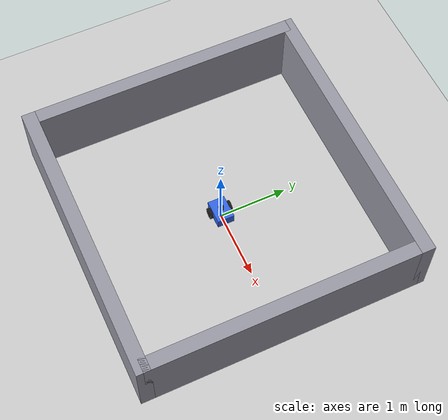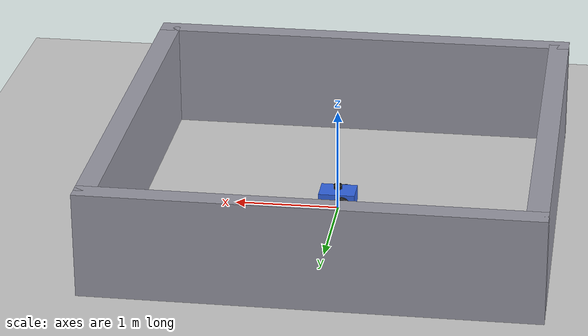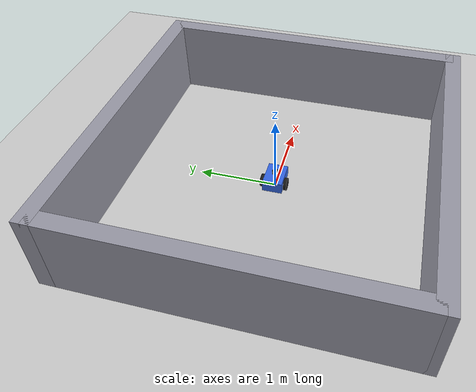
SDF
<?xml version="1.0" ?>
<sdf version="1.9">
  <world name="diff_drive_lidar_world">

    <physics name="1ms" type="ignored">
      <max_step_size>0.001</max_step_size>
      <real_time_factor>1.0</real_time_factor>
    </physics>

    <plugin filename="gz-sim-physics-system" name="gz::sim::systems::Physics">
    </plugin>
    <plugin filename="gz-sim-sensors-system" name="gz::sim::systems::Sensors">
      <render_engine>ogre</render_engine>
    </plugin>
    <plugin filename="gz-sim-scene-broadcaster-system" name="gz::sim::systems::SceneBroadcaster">
    </plugin>
    <plugin filename="gz-sim-user-commands-system" name="gz::sim::systems::UserCommands">
    </plugin>

    <light type="directional" name="sun">
      <cast_shadows>true</cast_shadows>
      <pose>0 0 10 0 0 0</pose>
      <diffuse>0.8 0.8 0.8 1</diffuse>
      <specular>0.2 0.2 0.2 1</specular>
      <attenuation>
        <range>1000</range>
        <constant>0.9</constant>
        <linear>0.01</linear>
        <quadratic>0.001</quadratic>
      </attenuation>
      <direction>-0.5 0.1 -0.9</direction>
    </light>

    <model name="ground_plane">
      <static>true</static>
      <link name="link">
        <collision name="collision">
          <geometry>
            <plane>
              <normal>0 0 1</normal>
              <size>20 20</size>
            </plane>
          </geometry>
        </collision>
        <visual name="visual">
          <geometry>
            <plane>
              <normal>0 0 1</normal>
              <size>20 20</size>
            </plane>
          </geometry>
          <material>
            <ambient>0.8 0.8 0.8 1</ambient>
            <diffuse>0.8 0.8 0.8 1</diffuse>
            <specular>0.8 0.8 0.8 1</specular>
          </material>
        </visual>
      </link>
    </model>

    <model name="arena_walls">
      <static>true</static>
      <link name="walls">
        <collision name="wall_north_collision">
          <pose>0 2 0.5 0 0 0</pose>
          <geometry><box><size>4.2 0.2 1.0</size></box></geometry>
        </collision>
        <visual name="wall_north_visual">
          <pose>0 2 0.5 0 0 0</pose>
          <geometry><box><size>4.2 0.2 1.0</size></box></geometry>
          <material>
            <ambient>0.6 0.6 0.65 1</ambient>
            <diffuse>0.6 0.6 0.65 1</diffuse>
          </material>
        </visual>

        <collision name="wall_south_collision">
          <pose>0 -2 0.5 0 0 0</pose>
          <geometry><box><size>4.2 0.2 1.0</size></box></geometry>
        </collision>
        <visual name="wall_south_visual">
          <pose>0 -2 0.5 0 0 0</pose>
          <geometry><box><size>4.2 0.2 1.0</size></box></geometry>
          <material>
            <ambient>0.6 0.6 0.65 1</ambient>
            <diffuse>0.6 0.6 0.65 1</diffuse>
          </material>
        </visual>

        <collision name="wall_east_collision">
          <pose>2 0 0.5 0 0 0</pose>
          <geometry><box><size>0.2 4.0 1.0</size></box></geometry>
        </collision>
        <visual name="wall_east_visual">
          <pose>2 0 0.5 0 0 0</pose>
          <geometry><box><size>0.2 4.0 1.0</size></box></geometry>
          <material>
            <ambient>0.6 0.6 0.65 1</ambient>
            <diffuse>0.6 0.6 0.65 1</diffuse>
          </material>
        </visual>

        <collision name="wall_west_collision">
          <pose>-2 0 0.5 0 0 0</pose>
          <geometry><box><size>0.2 4.0 1.0</size></box></geometry>
        </collision>
        <visual name="wall_west_visual">
          <pose>-2 0 0.5 0 0 0</pose>
          <geometry><box><size>0.2 4.0 1.0</size></box></geometry>
          <material>
            <ambient>0.6 0.6 0.65 1</ambient>
            <diffuse>0.6 0.6 0.65 1</diffuse>
          </material>
        </visual>
      </link>
    </model>

    <model name="diff_drive_robot">
      <pose>0 0 0.12 0 0 0</pose>

      <link name="chassis">
        <inertial>
          <mass>1.5</mass>
          <inertia>
            <ixx>0.0125</ixx>
            <iyy>0.0217</iyy>
            <izz>0.0313</izz>
            <ixy>0</ixy>
            <ixz>0</ixz>
            <iyz>0</iyz>
          </inertia>
        </inertial>
        <visual name="visual">
          <geometry>
            <box>
              <size>0.35 0.25 0.15</size>
            </box>
          </geometry>
          <material>
            <ambient>0.2 0.4 0.9 1</ambient>
            <diffuse>0.2 0.4 0.9 1</diffuse>
            <specular>0.3 0.3 0.3 1</specular>
          </material>
        </visual>
        <collision name="collision">
          <geometry>
            <box>
              <size>0.35 0.25 0.15</size>
            </box>
          </geometry>
        </collision>
      </link>

      <link name="left_wheel">
        <pose>-0.05 0.15 -0.02 -1.5707963 0 0</pose>
        <inertial>
          <mass>0.2</mass>
          <inertia>
            <ixx>0.000234</ixx>
            <iyy>0.000234</iyy>
            <izz>0.0004</izz>
            <ixy>0</ixy>
            <ixz>0</ixz>
            <iyz>0</iyz>
          </inertia>
        </inertial>
        <visual name="visual">
          <geometry>
            <cylinder>
              <radius>0.08</radius>
              <length>0.04</length>
            </cylinder>
          </geometry>
          <material>
            <ambient>0.1 0.1 0.1 1</ambient>
            <diffuse>0.1 0.1 0.1 1</diffuse>
          </material>
        </visual>
        <collision name="collision">
          <geometry>
            <cylinder>
              <radius>0.08</radius>
              <length>0.04</length>
            </cylinder>
          </geometry>
          <surface>
            <friction>
              <ode>
                <mu>1.0</mu>
                <mu2>1.0</mu2>
              </ode>
            </friction>
          </surface>
        </collision>
      </link>

      <link name="right_wheel">
        <pose>-0.05 -0.15 -0.02 -1.5707963 0 0</pose>
        <inertial>
          <mass>0.2</mass>
          <inertia>
            <ixx>0.000234</ixx>
            <iyy>0.000234</iyy>
            <izz>0.0004</izz>
            <ixy>0</ixy>
            <ixz>0</ixz>
            <iyz>0</iyz>
          </inertia>
        </inertial>
        <visual name="visual">
          <geometry>
            <cylinder>
              <radius>0.08</radius>
              <length>0.04</length>
            </cylinder>
          </geometry>
          <material>
            <ambient>0.1 0.1 0.1 1</ambient>
            <diffuse>0.1 0.1 0.1 1</diffuse>
          </material>
        </visual>
        <collision name="collision">
          <geometry>
            <cylinder>
              <radius>0.08</radius>
              <length>0.04</length>
            </cylinder>
          </geometry>
          <surface>
            <friction>
              <ode>
                <mu>1.0</mu>
                <mu2>1.0</mu2>
              </ode>
            </friction>
          </surface>
        </collision>
      </link>

      <link name="caster">
        <pose>0.13 0 -0.06 0 0 0</pose>
        <inertial>
          <mass>0.1</mass>
          <inertia>
            <ixx>0.00004</ixx>
            <iyy>0.00004</iyy>
            <izz>0.00004</izz>
          </inertia>
        </inertial>
        <visual name="visual">
          <geometry>
            <sphere><radius>0.03</radius></sphere>
          </geometry>
        </visual>
        <collision name="collision">
          <geometry>
            <sphere><radius>0.03</radius></sphere>
          </geometry>
          <surface>
            <friction>
              <ode>
                <mu>0.01</mu>
                <mu2>0.01</mu2>
              </ode>
            </friction>
          </surface>
        </collision>
      </link>

      <link name="lidar_link">
        <pose>0 0 0.11 0 0 0</pose>
        <inertial>
          <mass>0.05</mass>
          <inertia>
            <ixx>0.00001</ixx>
            <iyy>0.00001</iyy>
            <izz>0.00001</izz>
          </inertia>
        </inertial>
        <visual name="visual">
          <geometry>
            <cylinder>
              <radius>0.04</radius>
              <length>0.04</length>
            </cylinder>
          </geometry>
          <material>
            <ambient>0.1 0.1 0.1 1</ambient>
            <diffuse>0.1 0.1 0.1 1</diffuse>
          </material>
        </visual>
        <collision name="collision">
          <geometry>
            <cylinder>
              <radius>0.04</radius>
              <length>0.04</length>
            </cylinder>
          </geometry>
        </collision>

        <sensor name="gpu_lidar" type="gpu_lidar">
          <pose>0 0 0 0 0 0</pose>
          <topic>scan</topic>
          <update_rate>10</update_rate>
          <always_on>1</always_on>
          <visualize>false</visualize>
          <lidar>
            <scan>
              <horizontal>
                <samples>360</samples>
                <resolution>1</resolution>
                <min_angle>-3.14159265</min_angle>
                <max_angle>3.14159265</max_angle>
              </horizontal>
              <vertical>
                <samples>1</samples>
                <resolution>1</resolution>
                <min_angle>0</min_angle>
                <max_angle>0</max_angle>
              </vertical>
            </scan>
            <range>
              <min>0.08</min>
              <max>8.0</max>
              <resolution>0.01</resolution>
            </range>
          </lidar>
        </sensor>
      </link>

      <joint name="left_wheel_joint" type="revolute">
        <parent>chassis</parent>
        <child>left_wheel</child>
        <axis>
          <xyz>0 0 1</xyz>
          <limit>
            <lower>-1.79769e+308</lower>
            <upper>1.79769e+308</upper>
          </limit>
        </axis>
      </joint>

      <joint name="right_wheel_joint" type="revolute">
        <parent>chassis</parent>
        <child>right_wheel</child>
        <axis>
          <xyz>0 0 1</xyz>
          <limit>
            <lower>-1.79769e+308</lower>
            <upper>1.79769e+308</upper>
          </limit>
        </axis>
      </joint>

      <joint name="caster_wheel" type="ball">
        <parent>chassis</parent>
        <child>caster</child>
      </joint>

      <joint name="lidar_joint" type="fixed">
        <parent>chassis</parent>
        <child>lidar_link</child>
      </joint>

      <plugin filename="gz-sim-diff-drive-system" name="gz::sim::systems::DiffDrive">
        <left_joint>left_wheel_joint</left_joint>
        <right_joint>right_wheel_joint</right_joint>
        <wheel_separation>0.3</wheel_separation>
        <wheel_radius>0.08</wheel_radius>
        <topic>/cmd_vel</topic>
        <odom_publish_frequency>20</odom_publish_frequency>
        <max_linear_acceleration>2</max_linear_acceleration>
        <min_linear_acceleration>-2</min_linear_acceleration>
        <max_angular_acceleration>4</max_angular_acceleration>
        <min_angular_acceleration>-4</min_angular_acceleration>
        <max_linear_velocity>1.0</max_linear_velocity>
        <min_linear_velocity>-1.0</min_linear_velocity>
        <max_angular_velocity>2.0</max_angular_velocity>
        <min_angular_velocity>-2.0</min_angular_velocity>
      </plugin>

    </model>

  </world>
</sdf>
